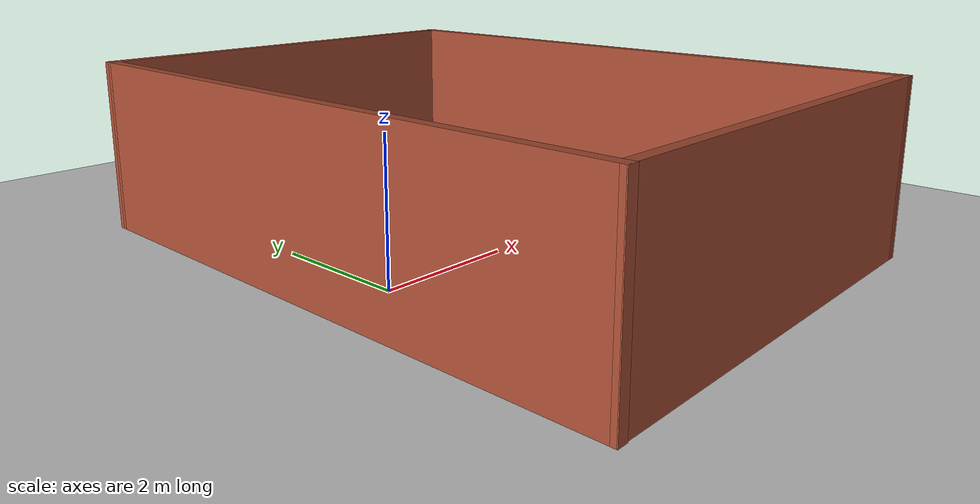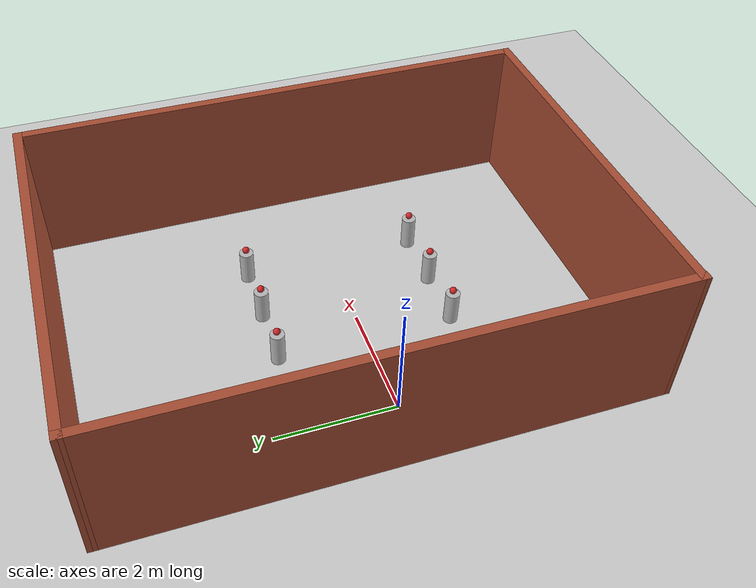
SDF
<?xml version="1.0" ?>
<sdf version="1.7">
  <world name="agrobot_test_field">

    <physics type="ode">
      <max_step_size>0.001</max_step_size>
      <real_time_factor>1</real_time_factor>
      <real_time_update_rate>1000</real_time_update_rate>
    </physics>

    <include>
      <uri>model://sun</uri>
    </include>
    <include>
      <uri>model://ground_plane</uri>
    </include>

    <model name='agrobot_walls'>
      <static>true</static>
      <pose>2.20715 0.370042 0 0 -0 0</pose>
      <link name='Wall_1'>
        <collision name='Wall_1_Collision'>
          <geometry><box><size>6.5 0.15 2.5</size></box></geometry>
          <pose>0 0 1.25 0 -0 0</pose>
        </collision>
        <visual name='Wall_1_Visual'>
          <pose>0 0 1.25 0 -0 0</pose>
          <geometry><box><size>6.5 0.15 2.5</size></box></geometry>
          <material>
            <script>
              <uri>file://media/materials/scripts/gazebo.material</uri>
              <name>Gazebo/Bricks</name>
            </script>
          </material>
        </visual>
        <pose>-0 -4.41831 0 0 -0 3.13743</pose>
      </link>
      <link name='Wall_3'>
        <collision name='Wall_3_Collision'>
          <geometry><box><size>9 0.15 2.5</size></box></geometry>
          <pose>0 0 1.25 0 -0 0</pose>
        </collision>
        <visual name='Wall_3_Visual'>
          <pose>0 0 1.25 0 -0 0</pose>
          <geometry><box><size>9 0.15 2.5</size></box></geometry>
          <material>
            <script>
              <uri>file://media/materials/scripts/gazebo.material</uri>
              <name>Gazebo/Bricks</name>
            </script>
          </material>
        </visual>
        <pose>-3.175 0.00669 0 0 -0 1.5708</pose>
      </link>
      <link name='Wall_4'>
        <collision name='Wall_4_Collision'>
          <geometry><box><size>6.50001 0.15 2.5</size></box></geometry>
          <pose>0 0 1.25 0 -0 0</pose>
        </collision>
        <visual name='Wall_4_Visual'>
          <pose>0 0 1.25 0 -0 0</pose>
          <geometry><box><size>6.50001 0.15 2.5</size></box></geometry>
          <material>
            <script>
              <uri>file://media/materials/scripts/gazebo.material</uri>
              <name>Gazebo/Bricks</name>
            </script>
          </material>
        </visual>
        <pose>-0 4.42508 0 0 -0 -0.002083</pose>
      </link>
      <link name='Wall_5'>
        <collision name='Wall_5_Collision'>
          <geometry><box><size>9 0.15 2.5</size></box></geometry>
          <pose>0 0 1.25 0 -0 0</pose>
        </collision>
        <visual name='Wall_5_Visual'>
          <pose>0 0 1.25 0 -0 0</pose>
          <geometry><box><size>9 0.15 2.5</size></box></geometry>
          <material>
            <script>
              <uri>file://media/materials/scripts/gazebo.material</uri>
              <name>Gazebo/Bricks</name>
            </script>
          </material>
        </visual>
        <pose>3.175 -0.006535 0 0 -0 -1.5708</pose>
      </link>
    </model>

    <model name='potted_target_L1'>
      <pose>1.5 1.5 0 0 0 0</pose>
      <static>true</static>
      <link name='pot'><pose>0 0 0.3 0 0 0</pose>
        <visual name='visual'><geometry><cylinder><radius>0.12</radius><length>0.6</length></cylinder></geometry><material><script><uri>file://media/materials/scripts/gazebo.material</uri><name>Gazebo/Dirt</name></script></material></visual>
        <collision name='collision'><geometry><cylinder><radius>0.12</radius><length>0.6</length></cylinder></geometry></collision>
      </link>
      <link name='tomato'><pose>0 0 0.66 0 0 0</pose>
        <visual name='visual'><geometry><sphere><radius>0.06</radius></sphere></geometry><material><script><uri>file://media/materials/scripts/gazebo.material</uri><name>Gazebo/Red</name></script></material></visual>
        <collision name='collision'><geometry><sphere><radius>0.06</radius></sphere></geometry></collision>
      </link>
    </model>

    <model name='potted_target_L2'>
      <pose>2.5 1.5 0 0 0 0</pose>
      <static>true</static>
      <link name='pot'><pose>0 0 0.3 0 0 0</pose>
        <visual name='visual'><geometry><cylinder><radius>0.12</radius><length>0.6</length></cylinder></geometry><material><script><uri>file://media/materials/scripts/gazebo.material</uri><name>Gazebo/Dirt</name></script></material></visual>
        <collision name='collision'><geometry><cylinder><radius>0.12</radius><length>0.6</length></cylinder></geometry></collision>
      </link>
      <link name='tomato'><pose>0 0 0.66 0 0 0</pose>
        <visual name='visual'><geometry><sphere><radius>0.06</radius></sphere></geometry><material><script><uri>file://media/materials/scripts/gazebo.material</uri><name>Gazebo/Red</name></script></material></visual>
        <collision name='collision'><geometry><sphere><radius>0.06</radius></sphere></geometry></collision>
      </link>
    </model>

    <model name='potted_target_L3'>
      <pose>3.5 1.5 0 0 0 0</pose>
      <static>true</static>
      <link name='pot'><pose>0 0 0.3 0 0 0</pose>
        <visual name='visual'><geometry><cylinder><radius>0.12</radius><length>0.6</length></cylinder></geometry><material><script><uri>file://media/materials/scripts/gazebo.material</uri><name>Gazebo/Dirt</name></script></material></visual>
        <collision name='collision'><geometry><cylinder><radius>0.12</radius><length>0.6</length></cylinder></geometry></collision>
      </link>
      <link name='tomato'><pose>0 0 0.66 0 0 0</pose>
        <visual name='visual'><geometry><sphere><radius>0.06</radius></sphere></geometry><material><script><uri>file://media/materials/scripts/gazebo.material</uri><name>Gazebo/Red</name></script></material></visual>
        <collision name='collision'><geometry><sphere><radius>0.06</radius></sphere></geometry></collision>
      </link>
    </model>

    <model name='potted_target_R1'>
      <pose>1.5 -1.5 0 0 0 0</pose>
      <static>true</static>
      <link name='pot'><pose>0 0 0.3 0 0 0</pose>
        <visual name='visual'><geometry><cylinder><radius>0.12</radius><length>0.6</length></cylinder></geometry><material><script><uri>file://media/materials/scripts/gazebo.material</uri><name>Gazebo/Dirt</name></script></material></visual>
        <collision name='collision'><geometry><cylinder><radius>0.12</radius><length>0.6</length></cylinder></geometry></collision>
      </link>
      <link name='tomato'><pose>0 0 0.66 0 0 0</pose>
        <visual name='visual'><geometry><sphere><radius>0.06</radius></sphere></geometry><material><script><uri>file://media/materials/scripts/gazebo.material</uri><name>Gazebo/Red</name></script></material></visual>
        <collision name='collision'><geometry><sphere><radius>0.06</radius></sphere></geometry></collision>
      </link>
    </model>

    <model name='potted_target_R2'>
      <pose>2.5 -1.5 0 0 0 0</pose>
      <static>true</static>
      <link name='pot'><pose>0 0 0.3 0 0 0</pose>
        <visual name='visual'><geometry><cylinder><radius>0.12</radius><length>0.6</length></cylinder></geometry><material><script><uri>file://media/materials/scripts/gazebo.material</uri><name>Gazebo/Dirt</name></script></material></visual>
        <collision name='collision'><geometry><cylinder><radius>0.12</radius><length>0.6</length></cylinder></geometry></collision>
      </link>
      <link name='tomato'><pose>0 0 0.66 0 0 0</pose>
        <visual name='visual'><geometry><sphere><radius>0.06</radius></sphere></geometry><material><script><uri>file://media/materials/scripts/gazebo.material</uri><name>Gazebo/Red</name></script></material></visual>
        <collision name='collision'><geometry><sphere><radius>0.06</radius></sphere></geometry></collision>
      </link>
    </model>

    <model name='potted_target_R3'>
      <pose>3.5 -1.5 0 0 0 0</pose>
      <static>true</static>
      <link name='pot'><pose>0 0 0.3 0 0 0</pose>
        <visual name='visual'><geometry><cylinder><radius>0.12</radius><length>0.6</length></cylinder></geometry><material><script><uri>file://media/materials/scripts/gazebo.material</uri><name>Gazebo/Dirt</name></script></material></visual>
        <collision name='collision'><geometry><cylinder><radius>0.12</radius><length>0.6</length></cylinder></geometry></collision>
      </link>
      <link name='tomato'><pose>0 0 0.66 0 0 0</pose>
        <visual name='visual'><geometry><sphere><radius>0.06</radius></sphere></geometry><material><script><uri>file://media/materials/scripts/gazebo.material</uri><name>Gazebo/Red</name></script></material></visual>
        <collision name='collision'><geometry><sphere><radius>0.06</radius></sphere></geometry></collision>
      </link>
    </model>

  </world>
</sdf>
